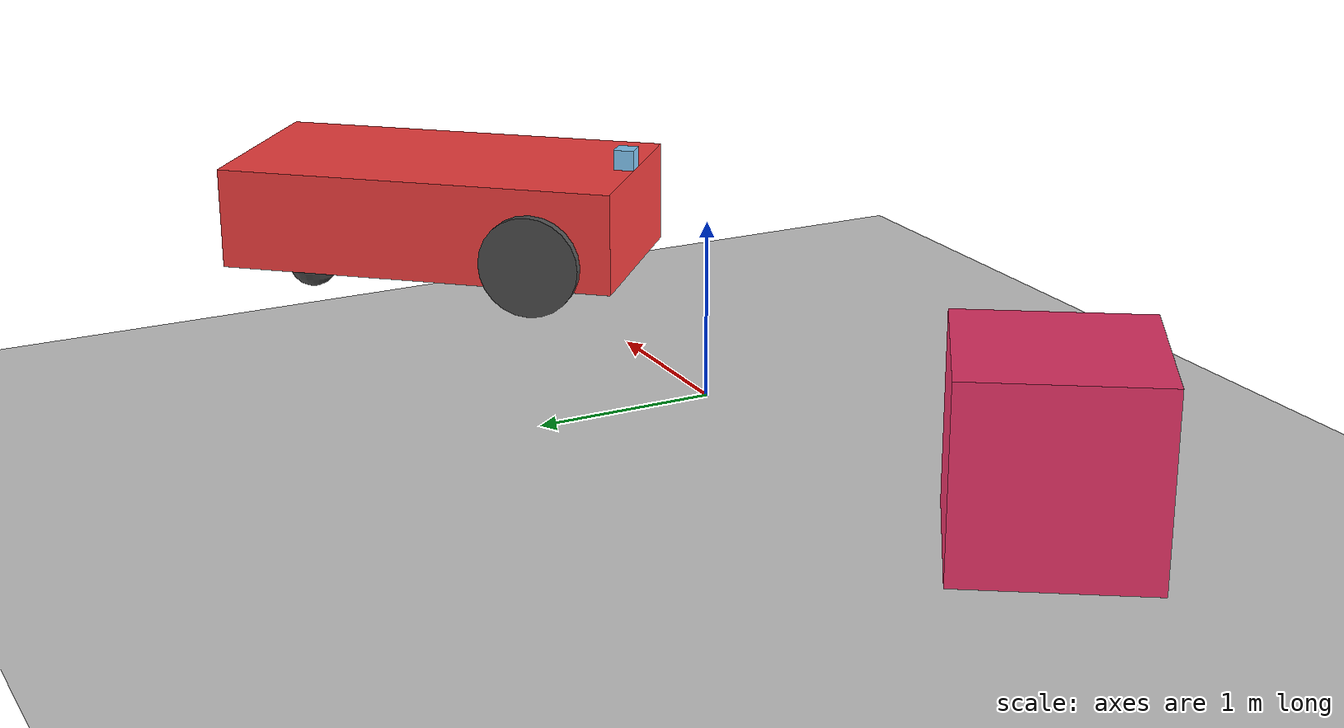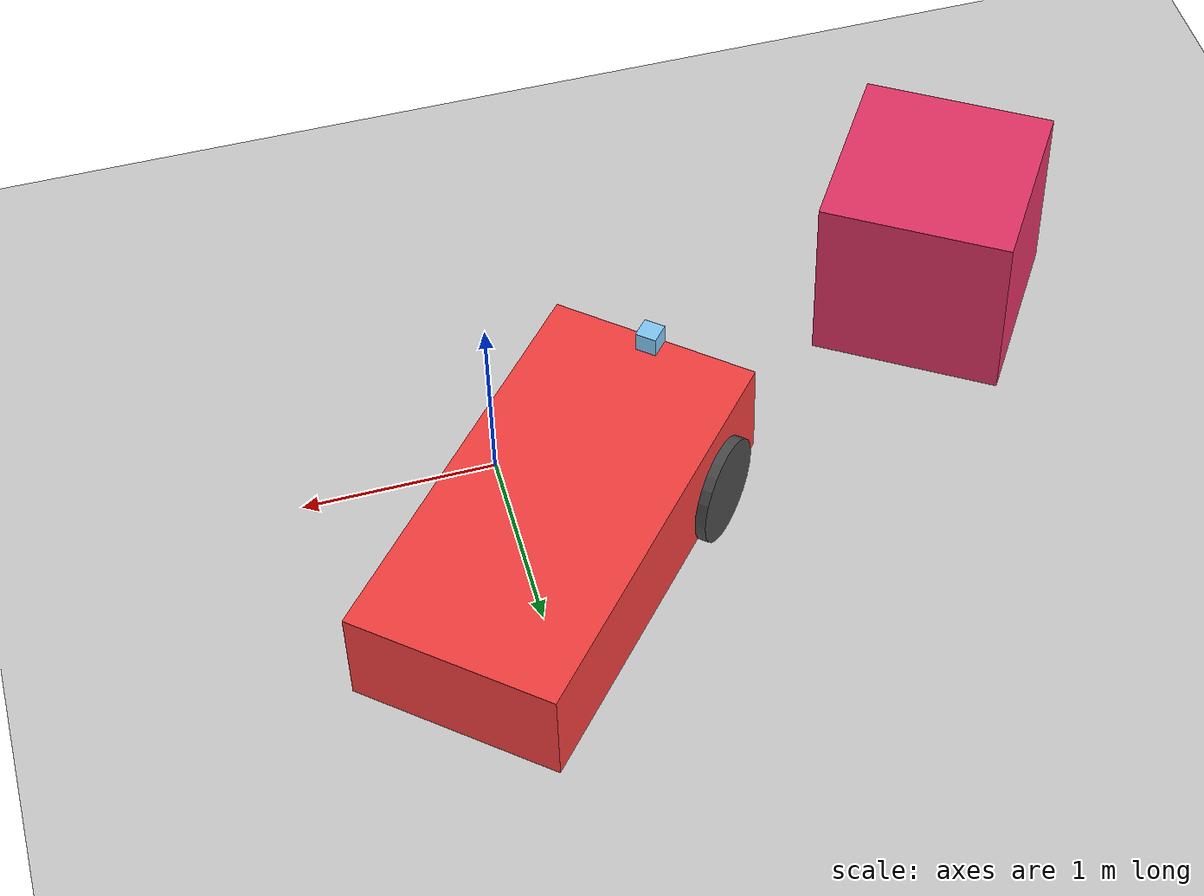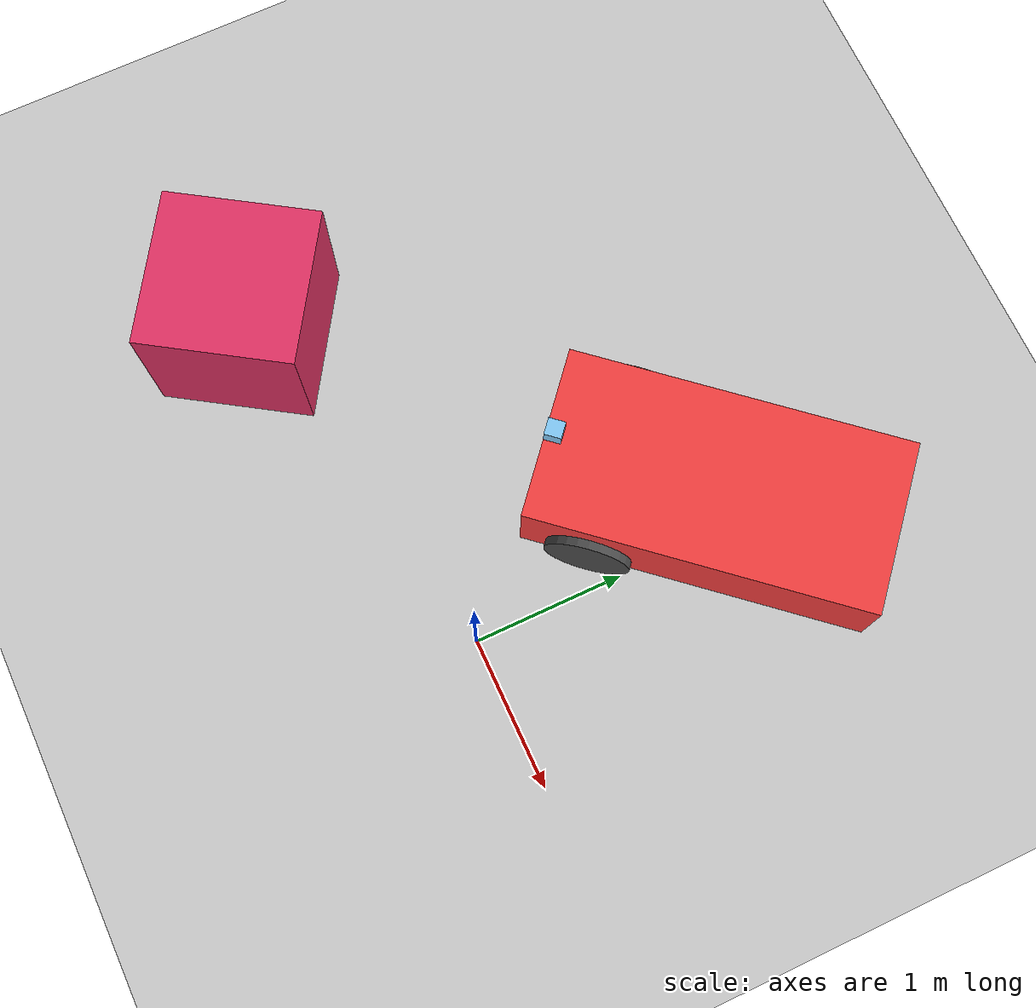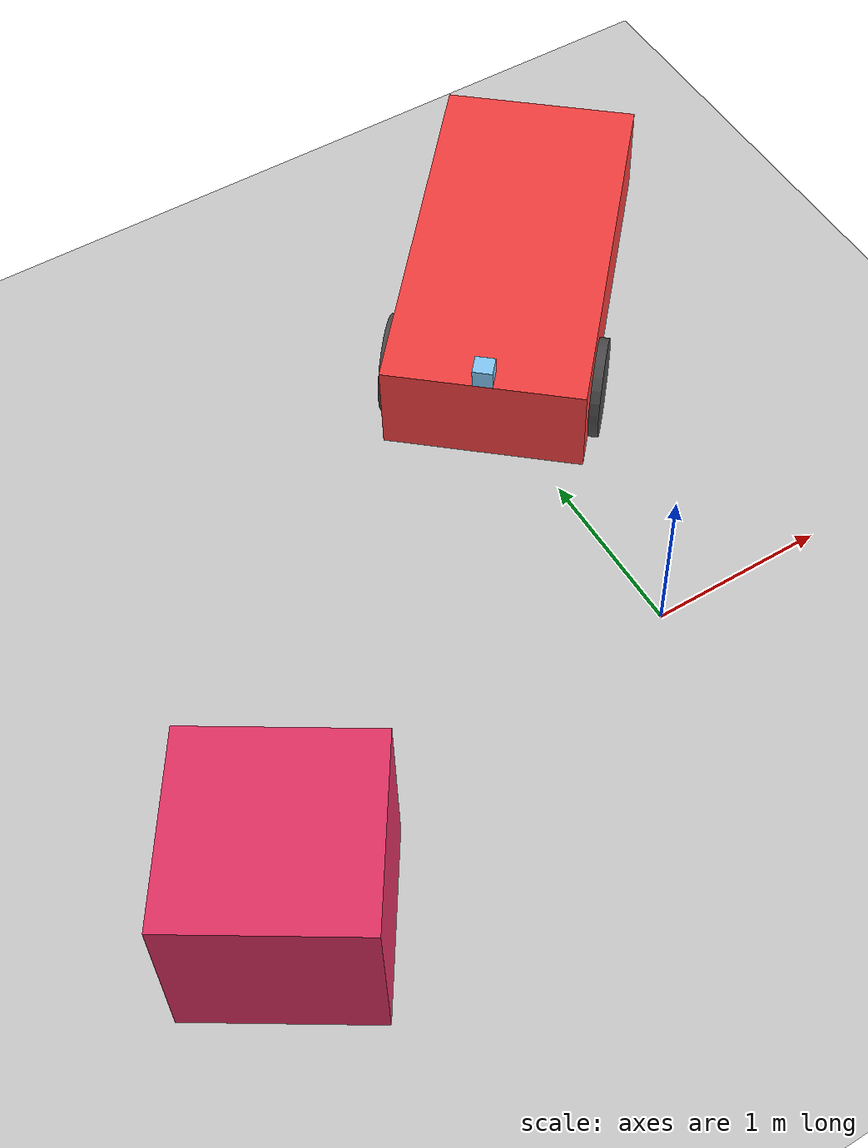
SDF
<?xml version="1.0" ?>
<sdf version="1.6">
    <world name="default">

        <plugin filename="ignition-gazebo-sensors-system" name="ignition::gazebo::systems::Sensors">
            <render_engine>ogre</render_engine>
        </plugin>
        <plugin filename="ignition-gazebo-scene-broadcaster-system" name="ignition::gazebo::systems::SceneBroadcaster">
        </plugin>
        <plugin filename="ignition-gazebo-physics-system" name="ignition::gazebo::systems::Physics">
        </plugin>
        <plugin filename="ignition-gazebo-user-commands-system" name="ignition::gazebo::systems::UserCommands">
        </plugin>

        <include>
            <uri>model://sun</uri>
        </include>

        <include>
            <uri>model://ground_plane</uri>
        </include>

        <include>
            <uri>model://car</uri>
            <pose>0 1.5 1.3 0 0 4 </pose>
        </include>

        <model name="sample_box">
            <pose>-2.5 -0.5 0.5 0 0 1</pose>
            <link name="link">
                <inertial>
                    <mass>1</mass>
                    <inertia>
                        <ixx>0.00166667</ixx>
                        <iyy>0.00166667</iyy>
                        <izz>0.00166667</izz>
                    </inertia>
                </inertial>
                <collision name="collision">
                    <geometry>
                        <box>
                            <size>1 1 1</size>
                        </box>
                    </geometry>
                </collision>
                <visual name="visual">
                    <material>
                        <diffuse> 0.9 0.2 0.4 1 </diffuse>
                        <specular> 0.2 0.2 0.2 0  </specular>
                        <emissive> 0 0 0 1 </emissive>
                        <ambient> 0.114 0.16 0.196 1 </ambient>
                    </material>
                    <geometry>
                        <box>
                            <size>1 1 1</size>
                        </box>
                    </geometry>
                </visual>
            </link>
        </model>

    </world>
</sdf>

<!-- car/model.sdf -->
<sdf version='1.7'>
    <model name='two_wheel_drive_car'>
        <link name='car_body__link'>
            <inertial>
                <pose>0.009406 0 0.00297 0 -0 0</pose>
                <mass>10.1</mass>
                <inertia>
                    <ixx>0.529911</ixx>
                    <ixy>0</ixy>
                    <ixz>-0.0282178</ixz>
                    <iyy>1.86927</iyy>
                    <iyz>0</iyz>
                    <izz>2.17286</izz>
                </inertia>
            </inertial>
            <collision name='car_body__link_fixed_joint_lump__car_body_collision'>
                <pose>0 0 0 0 -0 0</pose>
                <geometry>
                    <box>
                        <size>2 1 0.5</size>
                    </box>
                </geometry>
                <surface>
                    <contact>
                        <ode/>
                    </contact>
                    <friction>
                        <ode/>
                    </friction>
                </surface>
            </collision>
            <collision name='car_body__link_fixed_joint_lump__car_camera_collision_1'>
                <pose>0.95 0 0.3 0 -0 3.14</pose>
                <geometry>
                    <box>
                        <size>0.1 0.1 0.1</size>
                    </box>
                </geometry>
                <surface>
                    <contact>
                        <ode/>
                    </contact>
                    <friction>
                        <ode/>
                    </friction>
                </surface>
            </collision>
            <visual name='car_body__link_fixed_joint_lump__car_body_visual'>
                <pose>0 0 0 0 -0 0</pose>
                <geometry>
                    <box>
                        <size>2 1 0.5</size>
                    </box>
                </geometry>
                <material>
                    <diffuse> 0.97 0.25 0.25 1 </diffuse>
                    <specular> 0.2 0.2 0.2 1  </specular>
                    <emissive> 0 0 0 1 </emissive>
                    <ambient> 0.35 0.15 0.15 1 </ambient>
                </material>
            </visual>
            <visual name='car_body__link_fixed_joint_lump__car_camera_visual_1'>
                <pose>0.95 0 0.3 0 -0 3.14</pose>
                <geometry>
                    <box>
                        <size>0.1 0.1 0.1</size>
                    </box>
                </geometry>
                <material>
                    <diffuse> 0.52 0.8 0.98 1 </diffuse>
                    <specular> 0.2 0.2 0.2 0  </specular>
                    <emissive> 0 0 0 1 </emissive>
                    <ambient> 0.114 0.16 0.196 1 </ambient>
                </material>
            </visual>
            <sensor name='car_camera' type='camera'>
                <update_rate>24</update_rate>
                <visualize>1</visualize>
                <topic>camera</topic>
                <camera name='head'>
                    <horizontal_fov>1.39626</horizontal_fov>
                    <image>
                        <width>640</width>
                        <height>480</height>
                        <format>R8G8B8</format>
                    </image>
                    <clip>
                        <near>0.02</near>
                        <far>300</far>
                    </clip>
                </camera>
                <pose>0.95 0 0.3 0 -0 0</pose>
            </sensor>
        </link>
        <joint name='front_left_wheel_to_body' type='revolute'>
            <pose relative_to='car_body__link'>0.6 0.5 -0.125 -1.5708 0 0</pose>
            <parent>car_body__link</parent>
            <child>front_left_wheel</child>
            <axis>
                <xyz>0 0 1</xyz>
                <limit>
                    <lower>-1e+16</lower>
                    <upper>1e+16</upper>
                </limit>
                <dynamics>
                    <damping>0</damping>
                    <friction>0.5</friction>
                    <spring_reference>0</spring_reference>
                    <spring_stiffness>0</spring_stiffness>
                </dynamics>
            </axis>
        </joint>
        <link name='front_left_wheel'>
            <pose relative_to='front_left_wheel_to_body'>0 0 0 0 -0 0</pose>
            <inertial>
                <pose>0 0 0 0 -0 0</pose>
                <mass>0.5</mass>
                <inertia>
                    <ixx>0.00822917</ixx>
                    <ixy>0</ixy>
                    <ixz>0</ixz>
                    <iyy>0.00822917</iyy>
                    <iyz>0</iyz>
                    <izz>0.015625</izz>
                </inertia>
            </inertial>
            <collision name='front_left_wheel_collision'>
                <pose>0 0 0 0 -0 0</pose>
                <geometry>
                    <cylinder>
                        <length>0.1</length>
                        <radius>0.25</radius>
                    </cylinder>
                </geometry>
                <surface>
                    <contact>
                        <ode/>
                    </contact>
                    <friction>
                        <ode/>
                    </friction>
                </surface>
            </collision>
            <visual name='front_left_wheel_visual'>
                <pose>0 0 0 0 -0 0</pose>
                <geometry>
                    <cylinder>
                        <length>0.1</length>
                        <radius>0.25</radius>
                    </cylinder>
                </geometry>
                <material>
                    <diffuse> 0.3 0.3 0.3 1 </diffuse>
                    <specular> 0 0.2 0.2 1  </specular>
                    <emissive> 0 0 0 1 </emissive>
                    <ambient> 0.1 0.1 0.1 1 </ambient>
                </material>
            </visual>
        </link>
        <joint name='front_right_wheel_to_body' type='revolute'>
            <pose relative_to='car_body__link'>0.6 -0.5 -0.125 -1.5708 0 0</pose>
            <parent>car_body__link</parent>
            <child>front_right_wheel</child>
            <axis>
                <xyz>0 0 1</xyz>
                <limit>
                    <lower>-1e+16</lower>
                    <upper>1e+16</upper>
                </limit>
                <dynamics>
                    <damping>0</damping>
                    <friction>0.5</friction>
                    <spring_reference>0</spring_reference>
                    <spring_stiffness>0</spring_stiffness>
                </dynamics>
            </axis>
        </joint>
        <link name='front_right_wheel'>
            <pose relative_to='front_right_wheel_to_body'>0 0 0 0 -0 0</pose>
            <inertial>
                <pose>0 0 0 0 -0 0</pose>
                <mass>0.5</mass>
                <inertia>
                    <ixx>0.00822917</ixx>
                    <ixy>0</ixy>
                    <ixz>0</ixz>
                    <iyy>0.00822917</iyy>
                    <iyz>0</iyz>
                    <izz>0.015625</izz>
                </inertia>
            </inertial>
            <collision name='front_right_wheel_collision'>
                <pose>0 0 0 0 -0 0</pose>
                <geometry>
                    <cylinder>
                        <length>0.1</length>
                        <radius>0.25</radius>
                    </cylinder>
                </geometry>
                <surface>
                    <contact>
                        <ode/>
                    </contact>
                    <friction>
                        <ode/>
                    </friction>
                </surface>
            </collision>
            <visual name='front_right_wheel_visual'>
                <pose>0 0 0 0 -0 0</pose>
                <geometry>
                    <cylinder>
                        <length>0.1</length>
                        <radius>0.25</radius>
                    </cylinder>
                </geometry>
                <material>
                    <diffuse> 0.3 0.3 0.3 1 </diffuse>
                    <specular> 0 0.2 0.2 1  </specular>
                    <emissive> 0 0 0 1 </emissive>
                    <ambient> 0.1 0.1 0.1 1 </ambient>
                </material>
            </visual>
        </link>
        <joint name='rear_left_ball_wheel_to_body' type='ball'>
            <pose relative_to='car_body__link'>-0.6 0.3 -0.25 0 -0 0</pose>
            <parent>car_body__link</parent>
            <child>rear_left_ball_wheel</child>
        </joint>
        <link name='rear_left_ball_wheel'>
            <pose relative_to='rear_left_ball_wheel_to_body'>0 0 0 0 -0 0</pose>
            <inertial>
                <pose>0 0 0 0 -0 0</pose>
                <mass>0.5</mass>
                <inertia>
                    <ixx>0.003125</ixx>
                    <ixy>0</ixy>
                    <ixz>0</ixz>
                    <iyy>0.003125</iyy>
                    <iyz>0</iyz>
                    <izz>0.003125</izz>
                </inertia>
            </inertial>
            <collision name='rear_left_ball_wheel_collision'>
                <pose>0 0 0 0 -0 0</pose>
                <geometry>
                    <sphere>
                        <radius>0.125</radius>
                    </sphere>
                </geometry>
                <surface>
                    <contact>
                        <ode/>
                    </contact>
                    <friction>
                        <ode/>
                    </friction>
                </surface>
            </collision>
            <visual name='rear_left_ball_wheel_visual'>
                <pose>0 0 0 0 -0 0</pose>
                <geometry>
                    <sphere>
                        <radius>0.125</radius>
                    </sphere>
                </geometry>
                <material>
                    <diffuse> 0.3 0.3 0.3 1 </diffuse>
                    <specular> 0 0.2 0.2 1  </specular>
                    <emissive> 0 0 0 1 </emissive>
                    <ambient> 0.1 0.1 0.1 1 </ambient>
                </material>
            </visual>
        </link>
        <joint name='rear_right_ball_wheel_to_body' type='ball'>
            <pose relative_to='car_body__link'>-0.6 -0.3 -0.25 0 -0 0</pose>
            <parent>car_body__link</parent>
            <child>rear_right_ball_wheel</child>
        </joint>
        <link name='rear_right_ball_wheel'>
            <pose relative_to='rear_right_ball_wheel_to_body'>0 0 0 0 -0 0</pose>
            <inertial>
                <pose>0 0 0 0 -0 0</pose>
                <mass>0.5</mass>
                <inertia>
                    <ixx>0.003125</ixx>
                    <ixy>0</ixy>
                    <ixz>0</ixz>
                    <iyy>0.003125</iyy>
                    <iyz>0</iyz>
                    <izz>0.003125</izz>
                </inertia>
            </inertial>
            <collision name='rear_right_ball_wheel_collision'>
                <pose>0 0 0 0 -0 0</pose>
                <geometry>
                    <sphere>
                        <radius>0.125</radius>
                    </sphere>
                </geometry>
                <surface>
                    <contact>
                        <ode/>
                    </contact>
                    <friction>
                        <ode/>
                    </friction>
                </surface>
            </collision>
            <visual name='rear_right_ball_wheel_visual'>
                <pose>0 0 0 0 -0 0</pose>
                <geometry>
                    <sphere>
                        <radius>0.125</radius>
                    </sphere>
                </geometry>
                <material>
                    <diffuse> 0.3 0.3 0.3 1 </diffuse>
                    <specular> 0 0.2 0.2 1  </specular>
                    <emissive> 0 0 0 1 </emissive>
                    <ambient> 0.1 0.1 0.1 1 </ambient>
                </material>
            </visual>
        </link>
        <static>0</static>
        <plugin name='ignition::gazebo::systems::DiffDrive' filename='ignition-gazebo-diff-drive-system'>
            <left_joint>front_left_wheel_to_body</left_joint>
            <right_joint>front_right_wheel_to_body</right_joint>
            <wheel_separation>1</wheel_separation>
            <wheel_radius>0.25</wheel_radius>
            <odom_publish_frequency>1</odom_publish_frequency>
            <max_linear_acceleration>1</max_linear_acceleration>
            <min_linear_acceleration>-1</min_linear_acceleration>
            <max_angular_acceleration>1</max_angular_acceleration>
            <min_angular_acceleration>-1</min_angular_acceleration>
            <max_linear_velocity>0.5</max_linear_velocity>
            <min_linear_velocity>-0.5</min_linear_velocity>
            <max_angular_velocity>1</max_angular_velocity>
            <min_angular_velocity>-1</min_angular_velocity>
        </plugin>
    </model>
</sdf>
